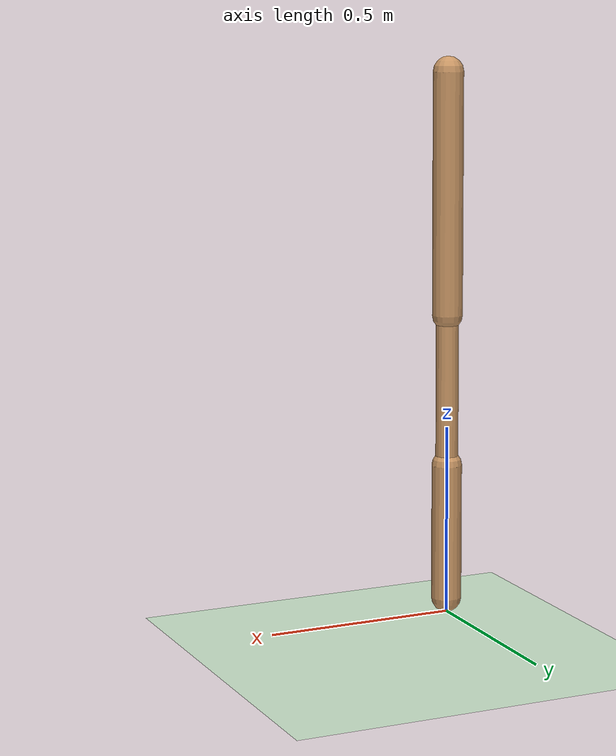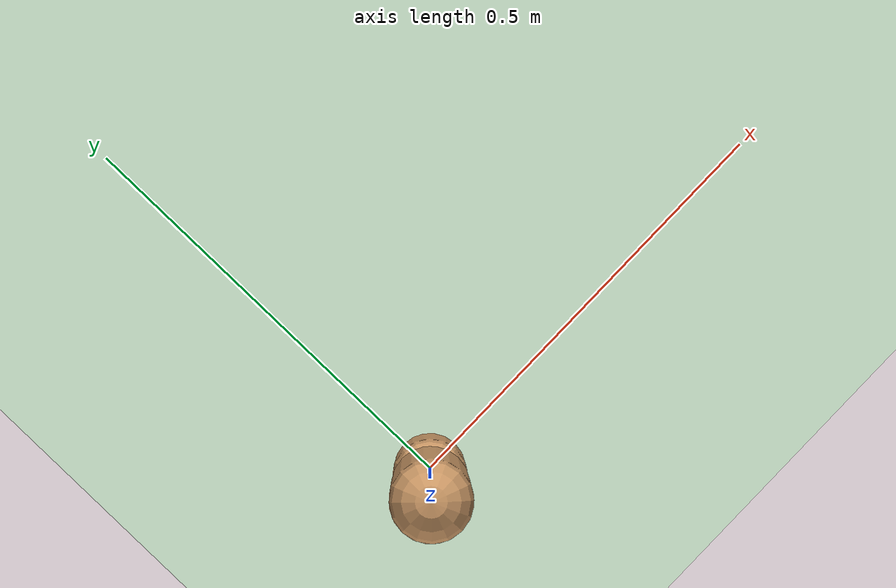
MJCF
<mujoco model="rabbit">
  <compiler angle="degree" coordinate="global" inertiafromgeom="true"/>
  <default>
    <joint armature="0.01" damping=".1" limited="true"/>
    <geom conaffinity="0" condim="3" contype="1" density="1000" friction=".7 .1 .1" rgba="0.8 0.6 .4 1"/>
  </default>
  <option integrator="RK4" timestep="0.002"/>
  <worldbody>
    <light cutoff="100" diffuse="1 1 1" dir="-0 0 -1.3" directional="true" exponent="1" pos="0 0 1.3" specular=".1 .1 .1"/>
    <geom conaffinity="1" condim="3" name="floor" pos="0 0 0" rgba="0.8 0.9 0.8 1" size="40 40 40" type="plane" material="MatPlane"/>
    <body name="torso" pos="0 0 1.115">
      <camera name="track" mode="trackcom" pos="0 -3 1" xyaxes="1 0 0 0 0 1"/>
      <inertial pos="0 0 1.115" quat="0.707107 0 0 0.707107" mass="12" diaginertia="1.33 1.33 0.1" />
      <!-- The three following joints are located in the hip of the robot and allow him to move in the sagital plane -->
      <joint armature="0" axis="1 0 0" damping="0" limited="false" name="rootx" pos="0 0 0" stiffness="0" type="slide"/>
      <joint armature="0" axis="0 0 1" damping="0" limited="false" name="rootz" pos="0 0 0" ref="0.8" stiffness="0" type="slide"/>
      <joint armature="0" axis="0 1 0" damping="0" limited="false" name="rooty" pos="0 0 0.8" stiffness="0" type="hinge"/>
      <geom friction="0.9" fromto="0 0 1.43 0 0 0.8" name="torso_geom" size="0.04" type="capsule"/>
      <body name="thigh" pos="0 0 0.6">
      	<inertial pos="0 0 0.6" mass="6.8" diaginertia="0.47 0.47 0.05" />
        <joint axis="0 1 0" name="thigh_joint" pos="0 0 0.8" ref="-180" range="45 270" type="hinge"/>
        <geom friction="0.9" fromto="0 0 0.8 0 0 0.4" name="thigh_geom" size="0.03" type="capsule"/>
        <body name="leg" pos="0 0 0.2">
          <inertial pos="0 0 0.24" mass="3.2" diaginertia="0.2 0.2 0.02" />
          <joint axis="0 1 0" name="leg_joint" pos="0 0 0.4" range="0 180" type="hinge"/>
          <geom friction="0.9" fromto="0 0 0.4 0 0 0.04" name="leg_geom" size="0.04" type="capsule"/>
        </body>
      </body>
      <!-- copied and then replace thigh->thigh_left, leg->leg_left, foot->foot_right -->
      <body name="thigh_left" pos="0 0 0.6">
      	<inertial pos="0 0 0.6" mass="6.8" diaginertia="0.47 0.47 0.05" />
        <joint axis="0 1 0" name="thigh_left_joint" pos="0 0 0.8" ref="-180" range="45 270" type="hinge"/>
        <geom friction="0.9" fromto="0 0 0.8 0 0 0.4" name="thigh_left_geom" rgba=".7 .3 .6 1" size="0.03" type="capsule"/>
        <body name="leg_left" pos="0 0 0.2">
          <inertial pos="0 0 0.24" mass="3.2" diaginertia="0.2 0.2 0.02" />
          <joint axis="0 1 0" name="leg_left_joint" pos="0 0 0.4" range="0 180" type="hinge"/>
          <geom friction="0.9" fromto="0 0 0.4 0 0 0.04" name="leg_left_geom" rgba=".7 .3 .6 1" size="0.04" type="capsule"/>
        </body>
      </body>
    </body>
  </worldbody>
  <actuator>
    <position ctrllimited="true" ctrlrange="0.785 4.72" gear="1" joint="thigh_joint"/>
    <position ctrllimited="true" ctrlrange="0 3.1416" gear="1" joint="leg_joint"/>
    <position ctrllimited="true" ctrlrange="0.785 4.72" gear="1" joint="thigh_left_joint"/>
    <position ctrllimited="true" ctrlrange="0 3.1416" gear="1" joint="leg_left_joint"/>
  </actuator>
    <asset>
        <texture type="skybox" builtin="gradient" rgb1=".4 .5 .6" rgb2="0 0 0"
            width="100" height="100"/>
        <texture builtin="flat" height="1278" mark="cross" markrgb="1 1 1" name="texgeom" random="0.01" rgb1="0.8 0.6 0.4" rgb2="0.8 0.6 0.4" type="cube" width="127"/>
        <texture builtin="checker" height="100" name="texplane" rgb1="0 0 0" rgb2="0.8 0.8 0.8" type="2d" width="100"/>
        <material name="MatPlane" reflectance="0.5" shininess="1" specular="1" texrepeat="60 60" texture="texplane"/>
        <material name="geom" texture="texgeom" texuniform="true"/>
    </asset>
</mujoco>
